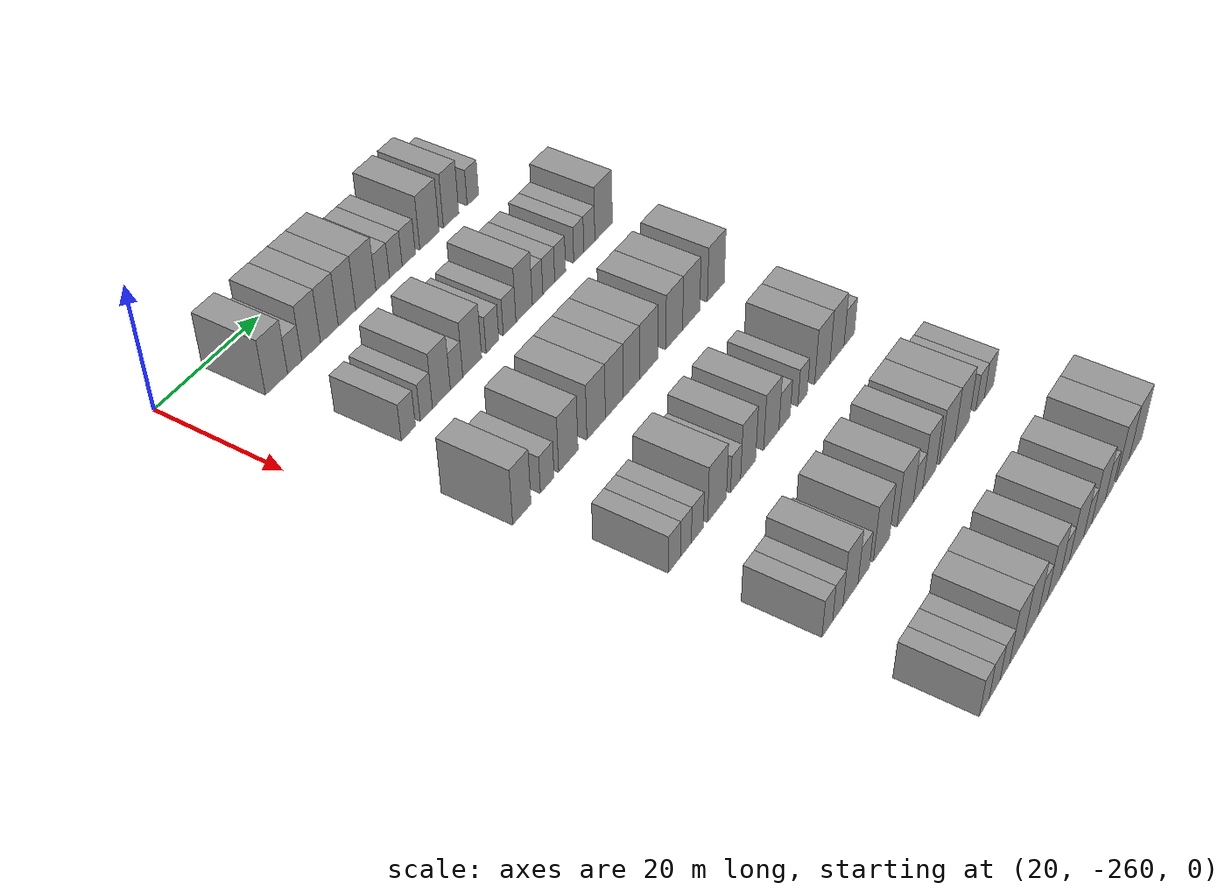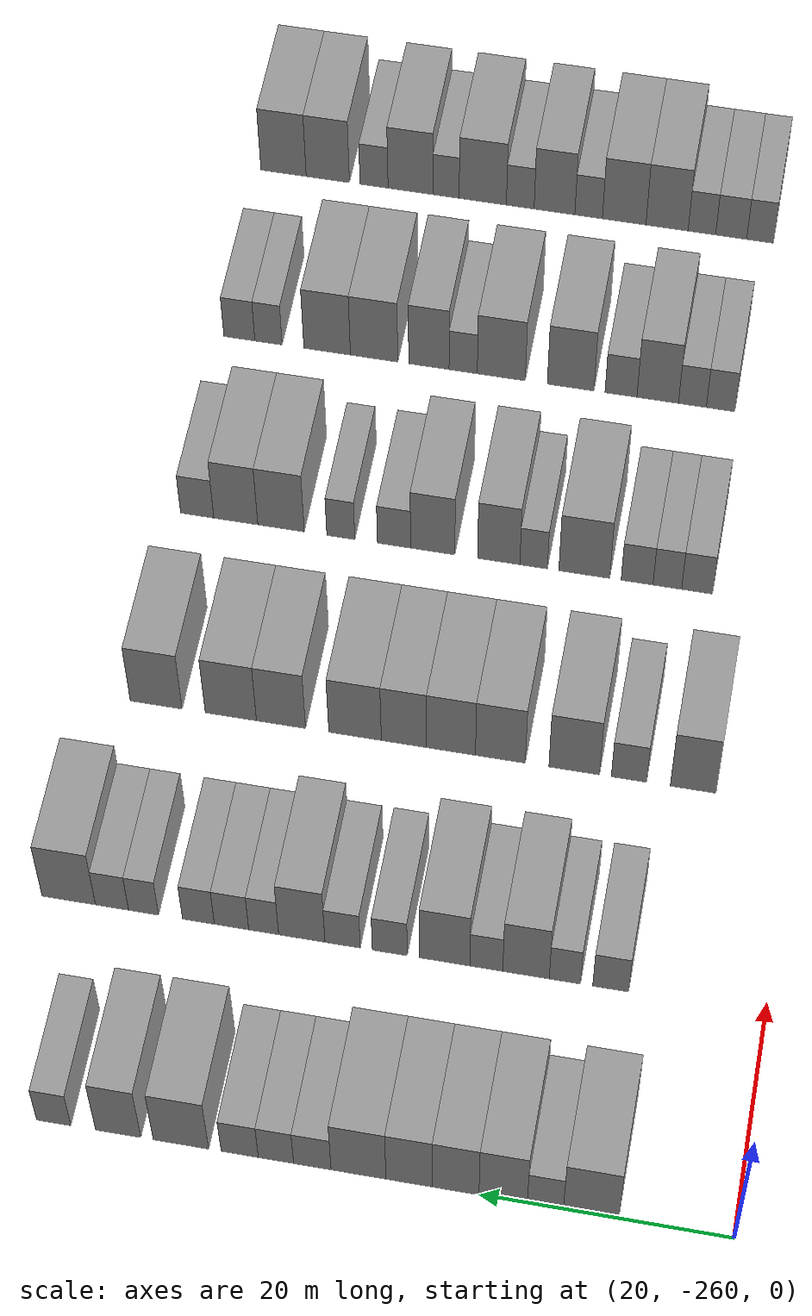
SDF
<sdf version="1.6">
 <world name="default">
  <model name="building_25">
   <static>1</static>
   <pose>25.0000 -248.8032 0 0.000000 0.000000 0.000000</pose>
   <link name="link">
    <pose>0 0 4.50 0 0 0</pose>
    <collision name="collision"><geometry><box><size>10.0000 4.3460 9.0000</size></box></geometry></collision>
    <visual name="visual">
     <cast_shadows>0</cast_shadows>
     <geometry><box><size>10.0000 4.3460 9.0000</size></box></geometry>
     <material>
      <script>
       <uri>model://grey_wall/materials/scripts</uri>
       <uri>model://grey_wall/materials/textures</uri>
       <name>vrc/grey_wall</name>
      </script>
     </material>
    </visual>
   </link>
  </model>
  <model name="building_26">
   <static>1</static>
   <pose>25.0000 -245.2129 0 0.000000 0.000000 0.000000</pose>
   <link name="link">
    <pose>0 0 3.00 0 0 0</pose>
    <collision name="collision"><geometry><box><size>10.0000 2.8346 6.0000</size></box></geometry></collision>
    <visual name="visual">
     <cast_shadows>0</cast_shadows>
     <geometry><box><size>10.0000 2.8346 6.0000</size></box></geometry>
     <material>
      <script>
       <uri>model://grey_wall/materials/scripts</uri>
       <uri>model://grey_wall/materials/textures</uri>
       <name>vrc/grey_wall</name>
      </script>
     </material>
    </visual>
   </link>
  </model>
  <model name="building_27">
   <static>1</static>
   <pose>25.0000 -241.8907 0 0.000000 0.000000 0.000000</pose>
   <link name="link">
    <pose>0 0 4.50 0 0 0</pose>
    <collision name="collision"><geometry><box><size>10.0000 3.8098 9.0000</size></box></geometry></collision>
    <visual name="visual">
     <cast_shadows>0</cast_shadows>
     <geometry><box><size>10.0000 3.8098 9.0000</size></box></geometry>
     <material>
      <script>
       <uri>model://grey_wall/materials/scripts</uri>
       <uri>model://grey_wall/materials/textures</uri>
       <name>vrc/grey_wall</name>
      </script>
     </material>
    </visual>
   </link>
  </model>
  <model name="building_28">
   <static>1</static>
   <pose>25.0000 -238.1412 0 0.000000 0.000000 0.000000</pose>
   <link name="link">
    <pose>0 0 4.50 0 0 0</pose>
    <collision name="collision"><geometry><box><size>10.0000 3.6891 9.0000</size></box></geometry></collision>
    <visual name="visual">
     <cast_shadows>0</cast_shadows>
     <geometry><box><size>10.0000 3.6891 9.0000</size></box></geometry>
     <material>
      <script>
       <uri>model://grey_wall/materials/scripts</uri>
       <uri>model://grey_wall/materials/textures</uri>
       <name>vrc/grey_wall</name>
      </script>
     </material>
    </visual>
   </link>
  </model>
  <model name="building_29">
   <static>1</static>
   <pose>25.0000 -234.4674 0 0.000000 0.000000 0.000000</pose>
   <link name="link">
    <pose>0 0 4.50 0 0 0</pose>
    <collision name="collision"><geometry><box><size>10.0000 3.6585 9.0000</size></box></geometry></collision>
    <visual name="visual">
     <cast_shadows>0</cast_shadows>
     <geometry><box><size>10.0000 3.6585 9.0000</size></box></geometry>
     <material>
      <script>
       <uri>model://grey_wall/materials/scripts</uri>
       <uri>model://grey_wall/materials/textures</uri>
       <name>vrc/grey_wall</name>
      </script>
     </material>
    </visual>
   </link>
  </model>
  <model name="building_30">
   <static>1</static>
   <pose>25.0000 -230.4585 0 0.000000 0.000000 0.000000</pose>
   <link name="link">
    <pose>0 0 4.50 0 0 0</pose>
    <collision name="collision"><geometry><box><size>10.0000 4.3592 9.0000</size></box></geometry></collision>
    <visual name="visual">
     <cast_shadows>0</cast_shadows>
     <geometry><box><size>10.0000 4.3592 9.0000</size></box></geometry>
     <material>
      <script>
       <uri>model://grey_wall/materials/scripts</uri>
       <uri>model://grey_wall/materials/textures</uri>
       <name>vrc/grey_wall</name>
      </script>
     </material>
    </visual>
   </link>
  </model>
  <model name="building_31">
   <static>1</static>
   <pose>25.0000 -226.7884 0 0.000000 0.000000 0.000000</pose>
   <link name="link">
    <pose>0 0 3.00 0 0 0</pose>
    <collision name="collision"><geometry><box><size>10.0000 2.9809 6.0000</size></box></geometry></collision>
    <visual name="visual">
     <cast_shadows>0</cast_shadows>
     <geometry><box><size>10.0000 2.9809 6.0000</size></box></geometry>
     <material>
      <script>
       <uri>model://grey_wall/materials/scripts</uri>
       <uri>model://grey_wall/materials/textures</uri>
       <name>vrc/grey_wall</name>
      </script>
     </material>
    </visual>
   </link>
  </model>
  <model name="building_32">
   <static>1</static>
   <pose>25.0000 -223.8885 0 0.000000 0.000000 0.000000</pose>
   <link name="link">
    <pose>0 0 3.00 0 0 0</pose>
    <collision name="collision"><geometry><box><size>10.0000 2.8190 6.0000</size></box></geometry></collision>
    <visual name="visual">
     <cast_shadows>0</cast_shadows>
     <geometry><box><size>10.0000 2.8190 6.0000</size></box></geometry>
     <material>
      <script>
       <uri>model://grey_wall/materials/scripts</uri>
       <uri>model://grey_wall/materials/textures</uri>
       <name>vrc/grey_wall</name>
      </script>
     </material>
    </visual>
   </link>
  </model>
  <model name="building_33">
   <static>1</static>
   <pose>25.0000 -220.9950 0 0.000000 0.000000 0.000000</pose>
   <link name="link">
    <pose>0 0 3.00 0 0 0</pose>
    <collision name="collision"><geometry><box><size>10.0000 2.9680 6.0000</size></box></geometry></collision>
    <visual name="visual">
     <cast_shadows>0</cast_shadows>
     <geometry><box><size>10.0000 2.9680 6.0000</size></box></geometry>
     <material>
      <script>
       <uri>model://grey_wall/materials/scripts</uri>
       <uri>model://grey_wall/materials/textures</uri>
       <name>vrc/grey_wall</name>
      </script>
     </material>
    </visual>
   </link>
  </model>
  <model name="building_34">
   <static>1</static>
   <pose>25.0000 -216.2891 0 0.000000 0.000000 0.000000</pose>
   <link name="link">
    <pose>0 0 4.50 0 0 0</pose>
    <collision name="collision"><geometry><box><size>10.0000 4.4438 9.0000</size></box></geometry></collision>
    <visual name="visual">
     <cast_shadows>0</cast_shadows>
     <geometry><box><size>10.0000 4.4438 9.0000</size></box></geometry>
     <material>
      <script>
       <uri>model://grey_wall/materials/scripts</uri>
       <uri>model://grey_wall/materials/textures</uri>
       <name>vrc/grey_wall</name>
      </script>
     </material>
    </visual>
   </link>
  </model>
  <model name="building_35">
   <static>1</static>
   <pose>25.0000 -211.2491 0 0.000000 0.000000 0.000000</pose>
   <link name="link">
    <pose>0 0 4.50 0 0 0</pose>
    <collision name="collision"><geometry><box><size>10.0000 3.6361 9.0000</size></box></geometry></collision>
    <visual name="visual">
     <cast_shadows>0</cast_shadows>
     <geometry><box><size>10.0000 3.6361 9.0000</size></box></geometry>
     <material>
      <script>
       <uri>model://grey_wall/materials/scripts</uri>
       <uri>model://grey_wall/materials/textures</uri>
       <name>vrc/grey_wall</name>
      </script>
     </material>
    </visual>
   </link>
  </model>
  <model name="building_36">
   <static>1</static>
   <pose>25.0000 -206.0531 0 0.000000 0.000000 0.000000</pose>
   <link name="link">
    <pose>0 0 3.00 0 0 0</pose>
    <collision name="collision"><geometry><box><size>10.0000 2.7557 6.0000</size></box></geometry></collision>
    <visual name="visual">
     <cast_shadows>0</cast_shadows>
     <geometry><box><size>10.0000 2.7557 6.0000</size></box></geometry>
     <material>
      <script>
       <uri>model://grey_wall/materials/scripts</uri>
       <uri>model://grey_wall/materials/textures</uri>
       <name>vrc/grey_wall</name>
      </script>
     </material>
    </visual>
   </link>
  </model>
  <model name="building_199">
   <static>1</static>
   <pose>44.0000 -247.4664 0 0.000000 0.000000 0.000000</pose>
   <link name="link">
    <pose>0 0 3.00 0 0 0</pose>
    <collision name="collision"><geometry><box><size>10.0000 2.9149 6.0000</size></box></geometry></collision>
    <visual name="visual">
     <cast_shadows>0</cast_shadows>
     <geometry><box><size>10.0000 2.9149 6.0000</size></box></geometry>
     <material>
      <script>
       <uri>model://grey_wall/materials/scripts</uri>
       <uri>model://grey_wall/materials/textures</uri>
       <name>vrc/grey_wall</name>
      </script>
     </material>
    </visual>
   </link>
  </model>
  <model name="building_200">
   <static>1</static>
   <pose>44.0000 -243.7336 0 0.000000 0.000000 0.000000</pose>
   <link name="link">
    <pose>0 0 3.00 0 0 0</pose>
    <collision name="collision"><geometry><box><size>10.0000 2.5506 6.0000</size></box></geometry></collision>
    <visual name="visual">
     <cast_shadows>0</cast_shadows>
     <geometry><box><size>10.0000 2.5506 6.0000</size></box></geometry>
     <material>
      <script>
       <uri>model://grey_wall/materials/scripts</uri>
       <uri>model://grey_wall/materials/textures</uri>
       <name>vrc/grey_wall</name>
      </script>
     </material>
    </visual>
   </link>
  </model>
  <model name="building_201">
   <static>1</static>
   <pose>44.0000 -240.5596 0 0.000000 0.000000 0.000000</pose>
   <link name="link">
    <pose>0 0 4.50 0 0 0</pose>
    <collision name="collision"><geometry><box><size>10.0000 3.7975 9.0000</size></box></geometry></collision>
    <visual name="visual">
     <cast_shadows>0</cast_shadows>
     <geometry><box><size>10.0000 3.7975 9.0000</size></box></geometry>
     <material>
      <script>
       <uri>model://grey_wall/materials/scripts</uri>
       <uri>model://grey_wall/materials/textures</uri>
       <name>vrc/grey_wall</name>
      </script>
     </material>
    </visual>
   </link>
  </model>
  <model name="building_202">
   <static>1</static>
   <pose>44.0000 -237.3171 0 0.000000 0.000000 0.000000</pose>
   <link name="link">
    <pose>0 0 3.00 0 0 0</pose>
    <collision name="collision"><geometry><box><size>10.0000 2.6875 6.0000</size></box></geometry></collision>
    <visual name="visual">
     <cast_shadows>0</cast_shadows>
     <geometry><box><size>10.0000 2.6875 6.0000</size></box></geometry>
     <material>
      <script>
       <uri>model://grey_wall/materials/scripts</uri>
       <uri>model://grey_wall/materials/textures</uri>
       <name>vrc/grey_wall</name>
      </script>
     </material>
    </visual>
   </link>
  </model>
  <model name="building_203">
   <static>1</static>
   <pose>44.0000 -233.9086 0 0.000000 0.000000 0.000000</pose>
   <link name="link">
    <pose>0 0 4.50 0 0 0</pose>
    <collision name="collision"><geometry><box><size>10.0000 4.1297 9.0000</size></box></geometry></collision>
    <visual name="visual">
     <cast_shadows>0</cast_shadows>
     <geometry><box><size>10.0000 4.1297 9.0000</size></box></geometry>
     <material>
      <script>
       <uri>model://grey_wall/materials/scripts</uri>
       <uri>model://grey_wall/materials/textures</uri>
       <name>vrc/grey_wall</name>
      </script>
     </material>
    </visual>
   </link>
  </model>
  <model name="building_204">
   <static>1</static>
   <pose>44.0000 -229.4083 0 0.000000 0.000000 0.000000</pose>
   <link name="link">
    <pose>0 0 3.00 0 0 0</pose>
    <collision name="collision"><geometry><box><size>10.0000 2.8708 6.0000</size></box></geometry></collision>
    <visual name="visual">
     <cast_shadows>0</cast_shadows>
     <geometry><box><size>10.0000 2.8708 6.0000</size></box></geometry>
     <material>
      <script>
       <uri>model://grey_wall/materials/scripts</uri>
       <uri>model://grey_wall/materials/textures</uri>
       <name>vrc/grey_wall</name>
      </script>
     </material>
    </visual>
   </link>
  </model>
  <model name="building_205">
   <static>1</static>
   <pose>44.0000 -225.5209 0 0.000000 0.000000 0.000000</pose>
   <link name="link">
    <pose>0 0 3.00 0 0 0</pose>
    <collision name="collision"><geometry><box><size>10.0000 2.9041 6.0000</size></box></geometry></collision>
    <visual name="visual">
     <cast_shadows>0</cast_shadows>
     <geometry><box><size>10.0000 2.9041 6.0000</size></box></geometry>
     <material>
      <script>
       <uri>model://grey_wall/materials/scripts</uri>
       <uri>model://grey_wall/materials/textures</uri>
       <name>vrc/grey_wall</name>
      </script>
     </material>
    </visual>
   </link>
  </model>
  <model name="building_206">
   <static>1</static>
   <pose>44.0000 -222.1540 0 0.000000 0.000000 0.000000</pose>
   <link name="link">
    <pose>0 0 4.50 0 0 0</pose>
    <collision name="collision"><geometry><box><size>10.0000 3.8296 9.0000</size></box></geometry></collision>
    <visual name="visual">
     <cast_shadows>0</cast_shadows>
     <geometry><box><size>10.0000 3.8296 9.0000</size></box></geometry>
     <material>
      <script>
       <uri>model://grey_wall/materials/scripts</uri>
       <uri>model://grey_wall/materials/textures</uri>
       <name>vrc/grey_wall</name>
      </script>
     </material>
    </visual>
   </link>
  </model>
  <model name="building_207">
   <static>1</static>
   <pose>44.0000 -218.9987 0 0.000000 0.000000 0.000000</pose>
   <link name="link">
    <pose>0 0 3.00 0 0 0</pose>
    <collision name="collision"><geometry><box><size>10.0000 2.4810 6.0000</size></box></geometry></collision>
    <visual name="visual">
     <cast_shadows>0</cast_shadows>
     <geometry><box><size>10.0000 2.4810 6.0000</size></box></geometry>
     <material>
      <script>
       <uri>model://grey_wall/materials/scripts</uri>
       <uri>model://grey_wall/materials/textures</uri>
       <name>vrc/grey_wall</name>
      </script>
     </material>
    </visual>
   </link>
  </model>
  <model name="building_208">
   <static>1</static>
   <pose>44.0000 -216.3346 0 0.000000 0.000000 0.000000</pose>
   <link name="link">
    <pose>0 0 3.00 0 0 0</pose>
    <collision name="collision"><geometry><box><size>10.0000 2.8474 6.0000</size></box></geometry></collision>
    <visual name="visual">
     <cast_shadows>0</cast_shadows>
     <geometry><box><size>10.0000 2.8474 6.0000</size></box></geometry>
     <material>
      <script>
       <uri>model://grey_wall/materials/scripts</uri>
       <uri>model://grey_wall/materials/textures</uri>
       <name>vrc/grey_wall</name>
      </script>
     </material>
    </visual>
   </link>
  </model>
  <model name="building_209">
   <static>1</static>
   <pose>44.0000 -213.5891 0 0.000000 0.000000 0.000000</pose>
   <link name="link">
    <pose>0 0 3.00 0 0 0</pose>
    <collision name="collision"><geometry><box><size>10.0000 2.6435 6.0000</size></box></geometry></collision>
    <visual name="visual">
     <cast_shadows>0</cast_shadows>
     <geometry><box><size>10.0000 2.6435 6.0000</size></box></geometry>
     <material>
      <script>
       <uri>model://grey_wall/materials/scripts</uri>
       <uri>model://grey_wall/materials/textures</uri>
       <name>vrc/grey_wall</name>
      </script>
     </material>
    </visual>
   </link>
  </model>
  <model name="building_210">
   <static>1</static>
   <pose>44.0000 -209.0147 0 0.000000 0.000000 0.000000</pose>
   <link name="link">
    <pose>0 0 3.00 0 0 0</pose>
    <collision name="collision"><geometry><box><size>10.0000 2.5054 6.0000</size></box></geometry></collision>
    <visual name="visual">
     <cast_shadows>0</cast_shadows>
     <geometry><box><size>10.0000 2.5054 6.0000</size></box></geometry>
     <material>
      <script>
       <uri>model://grey_wall/materials/scripts</uri>
       <uri>model://grey_wall/materials/textures</uri>
       <name>vrc/grey_wall</name>
      </script>
     </material>
    </visual>
   </link>
  </model>
  <model name="building_211">
   <static>1</static>
   <pose>44.0000 -206.3805 0 0.000000 0.000000 0.000000</pose>
   <link name="link">
    <pose>0 0 3.00 0 0 0</pose>
    <collision name="collision"><geometry><box><size>10.0000 2.7629 6.0000</size></box></geometry></collision>
    <visual name="visual">
     <cast_shadows>0</cast_shadows>
     <geometry><box><size>10.0000 2.7629 6.0000</size></box></geometry>
     <material>
      <script>
       <uri>model://grey_wall/materials/scripts</uri>
       <uri>model://grey_wall/materials/textures</uri>
       <name>vrc/grey_wall</name>
      </script>
     </material>
    </visual>
   </link>
  </model>
  <model name="building_212">
   <static>1</static>
   <pose>44.0000 -202.7674 0 0.000000 0.000000 0.000000</pose>
   <link name="link">
    <pose>0 0 4.50 0 0 0</pose>
    <collision name="collision"><geometry><box><size>10.0000 4.4634 9.0000</size></box></geometry></collision>
    <visual name="visual">
     <cast_shadows>0</cast_shadows>
     <geometry><box><size>10.0000 4.4634 9.0000</size></box></geometry>
     <material>
      <script>
       <uri>model://grey_wall/materials/scripts</uri>
       <uri>model://grey_wall/materials/textures</uri>
       <name>vrc/grey_wall</name>
      </script>
     </material>
    </visual>
   </link>
  </model>
  <model name="building_378">
   <static>1</static>
   <pose>63.0000 -251.5204 0 0.000000 0.000000 0.000000</pose>
   <link name="link">
    <pose>0 0 4.50 0 0 0</pose>
    <collision name="collision"><geometry><box><size>10.0000 3.8330 9.0000</size></box></geometry></collision>
    <visual name="visual">
     <cast_shadows>0</cast_shadows>
     <geometry><box><size>10.0000 3.8330 9.0000</size></box></geometry>
     <material>
      <script>
       <uri>model://grey_wall/materials/scripts</uri>
       <uri>model://grey_wall/materials/textures</uri>
       <name>vrc/grey_wall</name>
      </script>
     </material>
    </visual>
   </link>
  </model>
  <model name="building_379">
   <static>1</static>
   <pose>63.0000 -246.1240 0 0.000000 0.000000 0.000000</pose>
   <link name="link">
    <pose>0 0 3.00 0 0 0</pose>
    <collision name="collision"><geometry><box><size>10.0000 2.9600 6.0000</size></box></geometry></collision>
    <visual name="visual">
     <cast_shadows>0</cast_shadows>
     <geometry><box><size>10.0000 2.9600 6.0000</size></box></geometry>
     <material>
      <script>
       <uri>model://grey_wall/materials/scripts</uri>
       <uri>model://grey_wall/materials/textures</uri>
       <name>vrc/grey_wall</name>
      </script>
     </material>
    </visual>
   </link>
  </model>
  <model name="building_380">
   <static>1</static>
   <pose>63.0000 -241.5102 0 0.000000 0.000000 0.000000</pose>
   <link name="link">
    <pose>0 0 4.50 0 0 0</pose>
    <collision name="collision"><geometry><box><size>10.0000 4.2675 9.0000</size></box></geometry></collision>
    <visual name="visual">
     <cast_shadows>0</cast_shadows>
     <geometry><box><size>10.0000 4.2675 9.0000</size></box></geometry>
     <material>
      <script>
       <uri>model://grey_wall/materials/scripts</uri>
       <uri>model://grey_wall/materials/textures</uri>
       <name>vrc/grey_wall</name>
      </script>
     </material>
    </visual>
   </link>
  </model>
  <model name="building_381">
   <static>1</static>
   <pose>63.0000 -235.2664 0 0.000000 0.000000 0.000000</pose>
   <link name="link">
    <pose>0 0 4.50 0 0 0</pose>
    <collision name="collision"><geometry><box><size>10.0000 4.2202 9.0000</size></box></geometry></collision>
    <visual name="visual">
     <cast_shadows>0</cast_shadows>
     <geometry><box><size>10.0000 4.2202 9.0000</size></box></geometry>
     <material>
      <script>
       <uri>model://grey_wall/materials/scripts</uri>
       <uri>model://grey_wall/materials/textures</uri>
       <name>vrc/grey_wall</name>
      </script>
     </material>
    </visual>
   </link>
  </model>
  <model name="building_382">
   <static>1</static>
   <pose>63.0000 -231.0830 0 0.000000 0.000000 0.000000</pose>
   <link name="link">
    <pose>0 0 4.50 0 0 0</pose>
    <collision name="collision"><geometry><box><size>10.0000 4.1467 9.0000</size></box></geometry></collision>
    <visual name="visual">
     <cast_shadows>0</cast_shadows>
     <geometry><box><size>10.0000 4.1467 9.0000</size></box></geometry>
     <material>
      <script>
       <uri>model://grey_wall/materials/scripts</uri>
       <uri>model://grey_wall/materials/textures</uri>
       <name>vrc/grey_wall</name>
      </script>
     </material>
    </visual>
   </link>
  </model>
  <model name="building_383">
   <static>1</static>
   <pose>63.0000 -227.0829 0 0.000000 0.000000 0.000000</pose>
   <link name="link">
    <pose>0 0 4.50 0 0 0</pose>
    <collision name="collision"><geometry><box><size>10.0000 3.8535 9.0000</size></box></geometry></collision>
    <visual name="visual">
     <cast_shadows>0</cast_shadows>
     <geometry><box><size>10.0000 3.8535 9.0000</size></box></geometry>
     <material>
      <script>
       <uri>model://grey_wall/materials/scripts</uri>
       <uri>model://grey_wall/materials/textures</uri>
       <name>vrc/grey_wall</name>
      </script>
     </material>
    </visual>
   </link>
  </model>
  <model name="building_384">
   <static>1</static>
   <pose>63.0000 -222.9160 0 0.000000 0.000000 0.000000</pose>
   <link name="link">
    <pose>0 0 4.50 0 0 0</pose>
    <collision name="collision"><geometry><box><size>10.0000 4.4804 9.0000</size></box></geometry></collision>
    <visual name="visual">
     <cast_shadows>0</cast_shadows>
     <geometry><box><size>10.0000 4.4804 9.0000</size></box></geometry>
     <material>
      <script>
       <uri>model://grey_wall/materials/scripts</uri>
       <uri>model://grey_wall/materials/textures</uri>
       <name>vrc/grey_wall</name>
      </script>
     </material>
    </visual>
   </link>
  </model>
  <model name="building_385">
   <static>1</static>
   <pose>63.0000 -216.5715 0 0.000000 0.000000 0.000000</pose>
   <link name="link">
    <pose>0 0 4.50 0 0 0</pose>
    <collision name="collision"><geometry><box><size>10.0000 4.2087 9.0000</size></box></geometry></collision>
    <visual name="visual">
     <cast_shadows>0</cast_shadows>
     <geometry><box><size>10.0000 4.2087 9.0000</size></box></geometry>
     <material>
      <script>
       <uri>model://grey_wall/materials/scripts</uri>
       <uri>model://grey_wall/materials/textures</uri>
       <name>vrc/grey_wall</name>
      </script>
     </material>
    </visual>
   </link>
  </model>
  <model name="building_386">
   <static>1</static>
   <pose>63.0000 -212.2696 0 0.000000 0.000000 0.000000</pose>
   <link name="link">
    <pose>0 0 4.50 0 0 0</pose>
    <collision name="collision"><geometry><box><size>10.0000 4.3951 9.0000</size></box></geometry></collision>
    <visual name="visual">
     <cast_shadows>0</cast_shadows>
     <geometry><box><size>10.0000 4.3951 9.0000</size></box></geometry>
     <material>
      <script>
       <uri>model://grey_wall/materials/scripts</uri>
       <uri>model://grey_wall/materials/textures</uri>
       <name>vrc/grey_wall</name>
      </script>
     </material>
    </visual>
   </link>
  </model>
  <model name="building_387">
   <static>1</static>
   <pose>63.0000 -205.8389 0 0.000000 0.000000 0.000000</pose>
   <link name="link">
    <pose>0 0 4.50 0 0 0</pose>
    <collision name="collision"><geometry><box><size>10.0000 4.4661 9.0000</size></box></geometry></collision>
    <visual name="visual">
     <cast_shadows>0</cast_shadows>
     <geometry><box><size>10.0000 4.4661 9.0000</size></box></geometry>
     <material>
      <script>
       <uri>model://grey_wall/materials/scripts</uri>
       <uri>model://grey_wall/materials/textures</uri>
       <name>vrc/grey_wall</name>
      </script>
     </material>
    </visual>
   </link>
  </model>
  <model name="building_551">
   <static>1</static>
   <pose>82.0000 -249.2170 0 0.000000 0.000000 0.000000</pose>
   <link name="link">
    <pose>0 0 3.00 0 0 0</pose>
    <collision name="collision"><geometry><box><size>10.0000 2.6891 6.0000</size></box></geometry></collision>
    <visual name="visual">
     <cast_shadows>0</cast_shadows>
     <geometry><box><size>10.0000 2.6891 6.0000</size></box></geometry>
     <material>
      <script>
       <uri>model://grey_wall/materials/scripts</uri>
       <uri>model://grey_wall/materials/textures</uri>
       <name>vrc/grey_wall</name>
      </script>
     </material>
    </visual>
   </link>
  </model>
  <model name="building_552">
   <static>1</static>
   <pose>82.0000 -246.6298 0 0.000000 0.000000 0.000000</pose>
   <link name="link">
    <pose>0 0 3.00 0 0 0</pose>
    <collision name="collision"><geometry><box><size>10.0000 2.4854 6.0000</size></box></geometry></collision>
    <visual name="visual">
     <cast_shadows>0</cast_shadows>
     <geometry><box><size>10.0000 2.4854 6.0000</size></box></geometry>
     <material>
      <script>
       <uri>model://grey_wall/materials/scripts</uri>
       <uri>model://grey_wall/materials/textures</uri>
       <name>vrc/grey_wall</name>
      </script>
     </material>
    </visual>
   </link>
  </model>
  <model name="building_553">
   <static>1</static>
   <pose>82.0000 -244.0040 0 0.000000 0.000000 0.000000</pose>
   <link name="link">
    <pose>0 0 3.00 0 0 0</pose>
    <collision name="collision"><geometry><box><size>10.0000 2.7661 6.0000</size></box></geometry></collision>
    <visual name="visual">
     <cast_shadows>0</cast_shadows>
     <geometry><box><size>10.0000 2.7661 6.0000</size></box></geometry>
     <material>
      <script>
       <uri>model://grey_wall/materials/scripts</uri>
       <uri>model://grey_wall/materials/textures</uri>
       <name>vrc/grey_wall</name>
      </script>
     </material>
    </visual>
   </link>
  </model>
  <model name="building_554">
   <static>1</static>
   <pose>82.0000 -239.4024 0 0.000000 0.000000 0.000000</pose>
   <link name="link">
    <pose>0 0 4.50 0 0 0</pose>
    <collision name="collision"><geometry><box><size>10.0000 4.4371 9.0000</size></box></geometry></collision>
    <visual name="visual">
     <cast_shadows>0</cast_shadows>
     <geometry><box><size>10.0000 4.4371 9.0000</size></box></geometry>
     <material>
      <script>
       <uri>model://grey_wall/materials/scripts</uri>
       <uri>model://grey_wall/materials/textures</uri>
       <name>vrc/grey_wall</name>
      </script>
     </material>
    </visual>
   </link>
  </model>
  <model name="building_555">
   <static>1</static>
   <pose>82.0000 -234.9754 0 0.000000 0.000000 0.000000</pose>
   <link name="link">
    <pose>0 0 3.00 0 0 0</pose>
    <collision name="collision"><geometry><box><size>10.0000 2.4167 6.0000</size></box></geometry></collision>
    <visual name="visual">
     <cast_shadows>0</cast_shadows>
     <geometry><box><size>10.0000 2.4167 6.0000</size></box></geometry>
     <material>
      <script>
       <uri>model://grey_wall/materials/scripts</uri>
       <uri>model://grey_wall/materials/textures</uri>
       <name>vrc/grey_wall</name>
      </script>
     </material>
    </visual>
   </link>
  </model>
  <model name="building_556">
   <static>1</static>
   <pose>82.0000 -231.9183 0 0.000000 0.000000 0.000000</pose>
   <link name="link">
    <pose>0 0 4.50 0 0 0</pose>
    <collision name="collision"><geometry><box><size>10.0000 3.6974 9.0000</size></box></geometry></collision>
    <visual name="visual">
     <cast_shadows>0</cast_shadows>
     <geometry><box><size>10.0000 3.6974 9.0000</size></box></geometry>
     <material>
      <script>
       <uri>model://grey_wall/materials/scripts</uri>
       <uri>model://grey_wall/materials/textures</uri>
       <name>vrc/grey_wall</name>
      </script>
     </material>
    </visual>
   </link>
  </model>
  <model name="building_557">
   <static>1</static>
   <pose>82.0000 -226.1289 0 0.000000 0.000000 0.000000</pose>
   <link name="link">
    <pose>0 0 4.50 0 0 0</pose>
    <collision name="collision"><geometry><box><size>10.0000 3.8814 9.0000</size></box></geometry></collision>
    <visual name="visual">
     <cast_shadows>0</cast_shadows>
     <geometry><box><size>10.0000 3.8814 9.0000</size></box></geometry>
     <material>
      <script>
       <uri>model://grey_wall/materials/scripts</uri>
       <uri>model://grey_wall/materials/textures</uri>
       <name>vrc/grey_wall</name>
      </script>
     </material>
    </visual>
   </link>
  </model>
  <model name="building_558">
   <static>1</static>
   <pose>82.0000 -222.7239 0 0.000000 0.000000 0.000000</pose>
   <link name="link">
    <pose>0 0 3.00 0 0 0</pose>
    <collision name="collision"><geometry><box><size>10.0000 2.9287 6.0000</size></box></geometry></collision>
    <visual name="visual">
     <cast_shadows>0</cast_shadows>
     <geometry><box><size>10.0000 2.9287 6.0000</size></box></geometry>
     <material>
      <script>
       <uri>model://grey_wall/materials/scripts</uri>
       <uri>model://grey_wall/materials/textures</uri>
       <name>vrc/grey_wall</name>
      </script>
     </material>
    </visual>
   </link>
  </model>
  <model name="building_559">
   <static>1</static>
   <pose>82.0000 -218.0207 0 0.000000 0.000000 0.000000</pose>
   <link name="link">
    <pose>0 0 3.00 0 0 0</pose>
    <collision name="collision"><geometry><box><size>10.0000 2.4777 6.0000</size></box></geometry></collision>
    <visual name="visual">
     <cast_shadows>0</cast_shadows>
     <geometry><box><size>10.0000 2.4777 6.0000</size></box></geometry>
     <material>
      <script>
       <uri>model://grey_wall/materials/scripts</uri>
       <uri>model://grey_wall/materials/textures</uri>
       <name>vrc/grey_wall</name>
      </script>
     </material>
    </visual>
   </link>
  </model>
  <model name="building_560">
   <static>1</static>
   <pose>82.0000 -212.7212 0 0.000000 0.000000 0.000000</pose>
   <link name="link">
    <pose>0 0 4.50 0 0 0</pose>
    <collision name="collision"><geometry><box><size>10.0000 4.1213 9.0000</size></box></geometry></collision>
    <visual name="visual">
     <cast_shadows>0</cast_shadows>
     <geometry><box><size>10.0000 4.1213 9.0000</size></box></geometry>
     <material>
      <script>
       <uri>model://grey_wall/materials/scripts</uri>
       <uri>model://grey_wall/materials/textures</uri>
       <name>vrc/grey_wall</name>
      </script>
     </material>
    </visual>
   </link>
  </model>
  <model name="building_561">
   <static>1</static>
   <pose>82.0000 -208.7023 0 0.000000 0.000000 0.000000</pose>
   <link name="link">
    <pose>0 0 4.50 0 0 0</pose>
    <collision name="collision"><geometry><box><size>10.0000 3.9165 9.0000</size></box></geometry></collision>
    <visual name="visual">
     <cast_shadows>0</cast_shadows>
     <geometry><box><size>10.0000 3.9165 9.0000</size></box></geometry>
     <material>
      <script>
       <uri>model://grey_wall/materials/scripts</uri>
       <uri>model://grey_wall/materials/textures</uri>
       <name>vrc/grey_wall</name>
      </script>
     </material>
    </visual>
   </link>
  </model>
  <model name="building_562">
   <static>1</static>
   <pose>82.0000 -205.2701 0 0.000000 0.000000 0.000000</pose>
   <link name="link">
    <pose>0 0 3.00 0 0 0</pose>
    <collision name="collision"><geometry><box><size>10.0000 2.9480 6.0000</size></box></geometry></collision>
    <visual name="visual">
     <cast_shadows>0</cast_shadows>
     <geometry><box><size>10.0000 2.9480 6.0000</size></box></geometry>
     <material>
      <script>
       <uri>model://grey_wall/materials/scripts</uri>
       <uri>model://grey_wall/materials/textures</uri>
       <name>vrc/grey_wall</name>
      </script>
     </material>
    </visual>
   </link>
  </model>
  <model name="building_721">
   <static>1</static>
   <pose>101.0000 -248.7015 0 0.000000 0.000000 0.000000</pose>
   <link name="link">
    <pose>0 0 3.00 0 0 0</pose>
    <collision name="collision"><geometry><box><size>10.0000 2.5558 6.0000</size></box></geometry></collision>
    <visual name="visual">
     <cast_shadows>0</cast_shadows>
     <geometry><box><size>10.0000 2.5558 6.0000</size></box></geometry>
     <material>
      <script>
       <uri>model://grey_wall/materials/scripts</uri>
       <uri>model://grey_wall/materials/textures</uri>
       <name>vrc/grey_wall</name>
      </script>
     </material>
    </visual>
   </link>
  </model>
  <model name="building_722">
   <static>1</static>
   <pose>101.0000 -246.1711 0 0.000000 0.000000 0.000000</pose>
   <link name="link">
    <pose>0 0 3.00 0 0 0</pose>
    <collision name="collision"><geometry><box><size>10.0000 2.5050 6.0000</size></box></geometry></collision>
    <visual name="visual">
     <cast_shadows>0</cast_shadows>
     <geometry><box><size>10.0000 2.5050 6.0000</size></box></geometry>
     <material>
      <script>
       <uri>model://grey_wall/materials/scripts</uri>
       <uri>model://grey_wall/materials/textures</uri>
       <name>vrc/grey_wall</name>
      </script>
     </material>
    </visual>
   </link>
  </model>
  <model name="building_723">
   <static>1</static>
   <pose>101.0000 -243.0524 0 0.000000 0.000000 0.000000</pose>
   <link name="link">
    <pose>0 0 4.50 0 0 0</pose>
    <collision name="collision"><geometry><box><size>10.0000 3.7323 9.0000</size></box></geometry></collision>
    <visual name="visual">
     <cast_shadows>0</cast_shadows>
     <geometry><box><size>10.0000 3.7323 9.0000</size></box></geometry>
     <material>
      <script>
       <uri>model://grey_wall/materials/scripts</uri>
       <uri>model://grey_wall/materials/textures</uri>
       <name>vrc/grey_wall</name>
      </script>
     </material>
    </visual>
   </link>
  </model>
  <model name="building_724">
   <static>1</static>
   <pose>101.0000 -239.7533 0 0.000000 0.000000 0.000000</pose>
   <link name="link">
    <pose>0 0 3.00 0 0 0</pose>
    <collision name="collision"><geometry><box><size>10.0000 2.8658 6.0000</size></box></geometry></collision>
    <visual name="visual">
     <cast_shadows>0</cast_shadows>
     <geometry><box><size>10.0000 2.8658 6.0000</size></box></geometry>
     <material>
      <script>
       <uri>model://grey_wall/materials/scripts</uri>
       <uri>model://grey_wall/materials/textures</uri>
       <name>vrc/grey_wall</name>
      </script>
     </material>
    </visual>
   </link>
  </model>
  <model name="building_725">
   <static>1</static>
   <pose>101.0000 -235.2185 0 0.000000 0.000000 0.000000</pose>
   <link name="link">
    <pose>0 0 4.50 0 0 0</pose>
    <collision name="collision"><geometry><box><size>10.0000 4.2038 9.0000</size></box></geometry></collision>
    <visual name="visual">
     <cast_shadows>0</cast_shadows>
     <geometry><box><size>10.0000 4.2038 9.0000</size></box></geometry>
     <material>
      <script>
       <uri>model://grey_wall/materials/scripts</uri>
       <uri>model://grey_wall/materials/textures</uri>
       <name>vrc/grey_wall</name>
      </script>
     </material>
    </visual>
   </link>
  </model>
  <model name="building_726">
   <static>1</static>
   <pose>101.0000 -228.9412 0 0.000000 0.000000 0.000000</pose>
   <link name="link">
    <pose>0 0 4.50 0 0 0</pose>
    <collision name="collision"><geometry><box><size>10.0000 4.3508 9.0000</size></box></geometry></collision>
    <visual name="visual">
     <cast_shadows>0</cast_shadows>
     <geometry><box><size>10.0000 4.3508 9.0000</size></box></geometry>
     <material>
      <script>
       <uri>model://grey_wall/materials/scripts</uri>
       <uri>model://grey_wall/materials/textures</uri>
       <name>vrc/grey_wall</name>
      </script>
     </material>
    </visual>
   </link>
  </model>
  <model name="building_727">
   <static>1</static>
   <pose>101.0000 -225.4838 0 0.000000 0.000000 0.000000</pose>
   <link name="link">
    <pose>0 0 3.00 0 0 0</pose>
    <collision name="collision"><geometry><box><size>10.0000 2.5642 6.0000</size></box></geometry></collision>
    <visual name="visual">
     <cast_shadows>0</cast_shadows>
     <geometry><box><size>10.0000 2.5642 6.0000</size></box></geometry>
     <material>
      <script>
       <uri>model://grey_wall/materials/scripts</uri>
       <uri>model://grey_wall/materials/textures</uri>
       <name>vrc/grey_wall</name>
      </script>
     </material>
    </visual>
   </link>
  </model>
  <model name="building_728">
   <static>1</static>
   <pose>101.0000 -222.3728 0 0.000000 0.000000 0.000000</pose>
   <link name="link">
    <pose>0 0 4.50 0 0 0</pose>
    <collision name="collision"><geometry><box><size>10.0000 3.6578 9.0000</size></box></geometry></collision>
    <visual name="visual">
     <cast_shadows>0</cast_shadows>
     <geometry><box><size>10.0000 3.6578 9.0000</size></box></geometry>
     <material>
      <script>
       <uri>model://grey_wall/materials/scripts</uri>
       <uri>model://grey_wall/materials/textures</uri>
       <name>vrc/grey_wall</name>
      </script>
     </material>
    </visual>
   </link>
  </model>
  <model name="building_729">
   <static>1</static>
   <pose>101.0000 -217.3804 0 0.000000 0.000000 0.000000</pose>
   <link name="link">
    <pose>0 0 4.50 0 0 0</pose>
    <collision name="collision"><geometry><box><size>10.0000 4.3270 9.0000</size></box></geometry></collision>
    <visual name="visual">
     <cast_shadows>0</cast_shadows>
     <geometry><box><size>10.0000 4.3270 9.0000</size></box></geometry>
     <material>
      <script>
       <uri>model://grey_wall/materials/scripts</uri>
       <uri>model://grey_wall/materials/textures</uri>
       <name>vrc/grey_wall</name>
      </script>
     </material>
    </visual>
   </link>
  </model>
  <model name="building_730">
   <static>1</static>
   <pose>101.0000 -213.0917 0 0.000000 0.000000 0.000000</pose>
   <link name="link">
    <pose>0 0 4.50 0 0 0</pose>
    <collision name="collision"><geometry><box><size>10.0000 4.2503 9.0000</size></box></geometry></collision>
    <visual name="visual">
     <cast_shadows>0</cast_shadows>
     <geometry><box><size>10.0000 4.2503 9.0000</size></box></geometry>
     <material>
      <script>
       <uri>model://grey_wall/materials/scripts</uri>
       <uri>model://grey_wall/materials/textures</uri>
       <name>vrc/grey_wall</name>
      </script>
     </material>
    </visual>
   </link>
  </model>
  <model name="building_731">
   <static>1</static>
   <pose>101.0000 -207.7131 0 0.000000 0.000000 0.000000</pose>
   <link name="link">
    <pose>0 0 3.00 0 0 0</pose>
    <collision name="collision"><geometry><box><size>10.0000 2.5070 6.0000</size></box></geometry></collision>
    <visual name="visual">
     <cast_shadows>0</cast_shadows>
     <geometry><box><size>10.0000 2.5070 6.0000</size></box></geometry>
     <material>
      <script>
       <uri>model://grey_wall/materials/scripts</uri>
       <uri>model://grey_wall/materials/textures</uri>
       <name>vrc/grey_wall</name>
      </script>
     </material>
    </visual>
   </link>
  </model>
  <model name="building_732">
   <static>1</static>
   <pose>101.0000 -205.0413 0 0.000000 0.000000 0.000000</pose>
   <link name="link">
    <pose>0 0 3.00 0 0 0</pose>
    <collision name="collision"><geometry><box><size>10.0000 2.8366 6.0000</size></box></geometry></collision>
    <visual name="visual">
     <cast_shadows>0</cast_shadows>
     <geometry><box><size>10.0000 2.8366 6.0000</size></box></geometry>
     <material>
      <script>
       <uri>model://grey_wall/materials/scripts</uri>
       <uri>model://grey_wall/materials/textures</uri>
       <name>vrc/grey_wall</name>
      </script>
     </material>
    </visual>
   </link>
  </model>
  <model name="building_897">
   <static>1</static>
   <pose>120.0000 -249.7883 0 0.000000 0.000000 0.000000</pose>
   <link name="link">
    <pose>0 0 3.00 0 0 0</pose>
    <collision name="collision"><geometry><box><size>10.0000 2.4694 6.0000</size></box></geometry></collision>
    <visual name="visual">
     <cast_shadows>0</cast_shadows>
     <geometry><box><size>10.0000 2.4694 6.0000</size></box></geometry>
     <material>
      <script>
       <uri>model://grey_wall/materials/scripts</uri>
       <uri>model://grey_wall/materials/textures</uri>
       <name>vrc/grey_wall</name>
      </script>
     </material>
    </visual>
   </link>
  </model>
  <model name="building_898">
   <static>1</static>
   <pose>120.0000 -247.1186 0 0.000000 0.000000 0.000000</pose>
   <link name="link">
    <pose>0 0 3.00 0 0 0</pose>
    <collision name="collision"><geometry><box><size>10.0000 2.8700 6.0000</size></box></geometry></collision>
    <visual name="visual">
     <cast_shadows>0</cast_shadows>
     <geometry><box><size>10.0000 2.8700 6.0000</size></box></geometry>
     <material>
      <script>
       <uri>model://grey_wall/materials/scripts</uri>
       <uri>model://grey_wall/materials/textures</uri>
       <name>vrc/grey_wall</name>
      </script>
     </material>
    </visual>
   </link>
  </model>
  <model name="building_899">
   <static>1</static>
   <pose>120.0000 -244.4104 0 0.000000 0.000000 0.000000</pose>
   <link name="link">
    <pose>0 0 3.00 0 0 0</pose>
    <collision name="collision"><geometry><box><size>10.0000 2.5466 6.0000</size></box></geometry></collision>
    <visual name="visual">
     <cast_shadows>0</cast_shadows>
     <geometry><box><size>10.0000 2.5466 6.0000</size></box></geometry>
     <material>
      <script>
       <uri>model://grey_wall/materials/scripts</uri>
       <uri>model://grey_wall/materials/textures</uri>
       <name>vrc/grey_wall</name>
      </script>
     </material>
    </visual>
   </link>
  </model>
  <model name="building_900">
   <static>1</static>
   <pose>120.0000 -241.1797 0 0.000000 0.000000 0.000000</pose>
   <link name="link">
    <pose>0 0 4.50 0 0 0</pose>
    <collision name="collision"><geometry><box><size>10.0000 3.9148 9.0000</size></box></geometry></collision>
    <visual name="visual">
     <cast_shadows>0</cast_shadows>
     <geometry><box><size>10.0000 3.9148 9.0000</size></box></geometry>
     <material>
      <script>
       <uri>model://grey_wall/materials/scripts</uri>
       <uri>model://grey_wall/materials/textures</uri>
       <name>vrc/grey_wall</name>
      </script>
     </material>
    </visual>
   </link>
  </model>
  <model name="building_901">
   <static>1</static>
   <pose>120.0000 -237.1986 0 0.000000 0.000000 0.000000</pose>
   <link name="link">
    <pose>0 0 4.50 0 0 0</pose>
    <collision name="collision"><geometry><box><size>10.0000 4.0474 9.0000</size></box></geometry></collision>
    <visual name="visual">
     <cast_shadows>0</cast_shadows>
     <geometry><box><size>10.0000 4.0474 9.0000</size></box></geometry>
     <material>
      <script>
       <uri>model://grey_wall/materials/scripts</uri>
       <uri>model://grey_wall/materials/textures</uri>
       <name>vrc/grey_wall</name>
      </script>
     </material>
    </visual>
   </link>
  </model>
  <model name="building_902">
   <static>1</static>
   <pose>120.0000 -233.8926 0 0.000000 0.000000 0.000000</pose>
   <link name="link">
    <pose>0 0 3.00 0 0 0</pose>
    <collision name="collision"><geometry><box><size>10.0000 2.5646 6.0000</size></box></geometry></collision>
    <visual name="visual">
     <cast_shadows>0</cast_shadows>
     <geometry><box><size>10.0000 2.5646 6.0000</size></box></geometry>
     <material>
      <script>
       <uri>model://grey_wall/materials/scripts</uri>
       <uri>model://grey_wall/materials/textures</uri>
       <name>vrc/grey_wall</name>
      </script>
     </material>
    </visual>
   </link>
  </model>
  <model name="building_903">
   <static>1</static>
   <pose>120.0000 -230.7108 0 0.000000 0.000000 0.000000</pose>
   <link name="link">
    <pose>0 0 4.50 0 0 0</pose>
    <collision name="collision"><geometry><box><size>10.0000 3.7990 9.0000</size></box></geometry></collision>
    <visual name="visual">
     <cast_shadows>0</cast_shadows>
     <geometry><box><size>10.0000 3.7990 9.0000</size></box></geometry>
     <material>
      <script>
       <uri>model://grey_wall/materials/scripts</uri>
       <uri>model://grey_wall/materials/textures</uri>
       <name>vrc/grey_wall</name>
      </script>
     </material>
    </visual>
   </link>
  </model>
  <model name="building_904">
   <static>1</static>
   <pose>120.0000 -227.5155 0 0.000000 0.000000 0.000000</pose>
   <link name="link">
    <pose>0 0 3.00 0 0 0</pose>
    <collision name="collision"><geometry><box><size>10.0000 2.5916 6.0000</size></box></geometry></collision>
    <visual name="visual">
     <cast_shadows>0</cast_shadows>
     <geometry><box><size>10.0000 2.5916 6.0000</size></box></geometry>
     <material>
      <script>
       <uri>model://grey_wall/materials/scripts</uri>
       <uri>model://grey_wall/materials/textures</uri>
       <name>vrc/grey_wall</name>
      </script>
     </material>
    </visual>
   </link>
  </model>
  <model name="building_905">
   <static>1</static>
   <pose>120.0000 -224.0083 0 0.000000 0.000000 0.000000</pose>
   <link name="link">
    <pose>0 0 4.50 0 0 0</pose>
    <collision name="collision"><geometry><box><size>10.0000 4.4228 9.0000</size></box></geometry></collision>
    <visual name="visual">
     <cast_shadows>0</cast_shadows>
     <geometry><box><size>10.0000 4.4228 9.0000</size></box></geometry>
     <material>
      <script>
       <uri>model://grey_wall/materials/scripts</uri>
       <uri>model://grey_wall/materials/textures</uri>
       <name>vrc/grey_wall</name>
      </script>
     </material>
    </visual>
   </link>
  </model>
  <model name="building_906">
   <static>1</static>
   <pose>120.0000 -220.5728 0 0.000000 0.000000 0.000000</pose>
   <link name="link">
    <pose>0 0 3.00 0 0 0</pose>
    <collision name="collision"><geometry><box><size>10.0000 2.4481 6.0000</size></box></geometry></collision>
    <visual name="visual">
     <cast_shadows>0</cast_shadows>
     <geometry><box><size>10.0000 2.4481 6.0000</size></box></geometry>
     <material>
      <script>
       <uri>model://grey_wall/materials/scripts</uri>
       <uri>model://grey_wall/materials/textures</uri>
       <name>vrc/grey_wall</name>
      </script>
     </material>
    </visual>
   </link>
  </model>
  <model name="building_907">
   <static>1</static>
   <pose>120.0000 -217.2310 0 0.000000 0.000000 0.000000</pose>
   <link name="link">
    <pose>0 0 4.50 0 0 0</pose>
    <collision name="collision"><geometry><box><size>10.0000 4.2356 9.0000</size></box></geometry></collision>
    <visual name="visual">
     <cast_shadows>0</cast_shadows>
     <geometry><box><size>10.0000 4.2356 9.0000</size></box></geometry>
     <material>
      <script>
       <uri>model://grey_wall/materials/scripts</uri>
       <uri>model://grey_wall/materials/textures</uri>
       <name>vrc/grey_wall</name>
      </script>
     </material>
    </visual>
   </link>
  </model>
  <model name="building_908">
   <static>1</static>
   <pose>120.0000 -213.7944 0 0.000000 0.000000 0.000000</pose>
   <link name="link">
    <pose>0 0 3.00 0 0 0</pose>
    <collision name="collision"><geometry><box><size>10.0000 2.6375 6.0000</size></box></geometry></collision>
    <visual name="visual">
     <cast_shadows>0</cast_shadows>
     <geometry><box><size>10.0000 2.6375 6.0000</size></box></geometry>
     <material>
      <script>
       <uri>model://grey_wall/materials/scripts</uri>
       <uri>model://grey_wall/materials/textures</uri>
       <name>vrc/grey_wall</name>
      </script>
     </material>
    </visual>
   </link>
  </model>
  <model name="building_909">
   <static>1</static>
   <pose>120.0000 -209.4309 0 0.000000 0.000000 0.000000</pose>
   <link name="link">
    <pose>0 0 4.50 0 0 0</pose>
    <collision name="collision"><geometry><box><size>10.0000 4.0896 9.0000</size></box></geometry></collision>
    <visual name="visual">
     <cast_shadows>0</cast_shadows>
     <geometry><box><size>10.0000 4.0896 9.0000</size></box></geometry>
     <material>
      <script>
       <uri>model://grey_wall/materials/scripts</uri>
       <uri>model://grey_wall/materials/textures</uri>
       <name>vrc/grey_wall</name>
      </script>
     </material>
    </visual>
   </link>
  </model>
  <model name="building_910">
   <static>1</static>
   <pose>120.0000 -205.2483 0 0.000000 0.000000 0.000000</pose>
   <link name="link">
    <pose>0 0 4.50 0 0 0</pose>
    <collision name="collision"><geometry><box><size>10.0000 4.2755 9.0000</size></box></geometry></collision>
    <visual name="visual">
     <cast_shadows>0</cast_shadows>
     <geometry><box><size>10.0000 4.2755 9.0000</size></box></geometry>
     <material>
      <script>
       <uri>model://grey_wall/materials/scripts</uri>
       <uri>model://grey_wall/materials/textures</uri>
       <name>vrc/grey_wall</name>
      </script>
     </material>
    </visual>
   </link>
  </model>
 </world>
</sdf>
